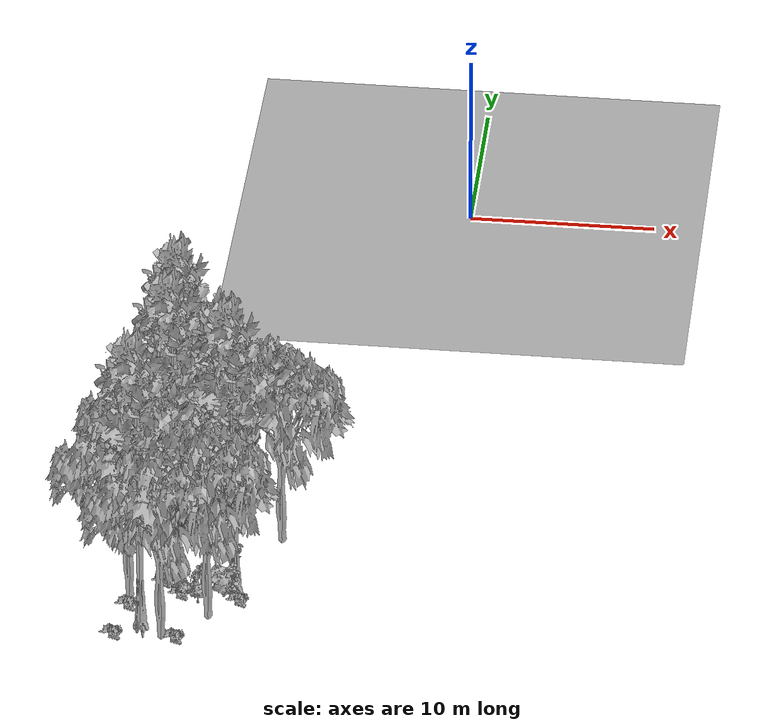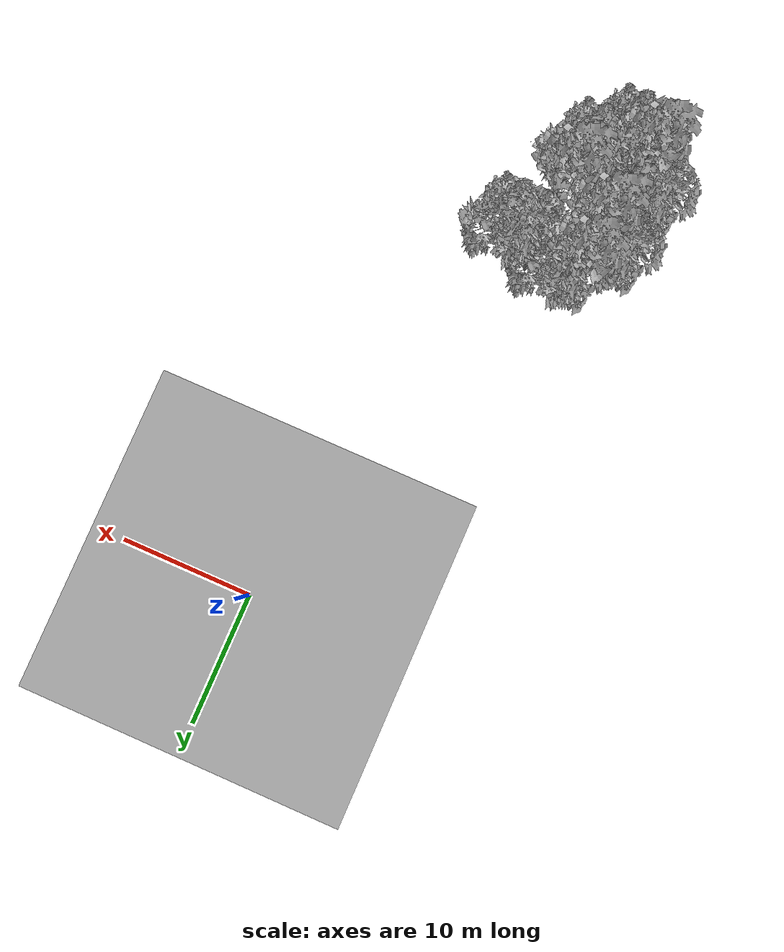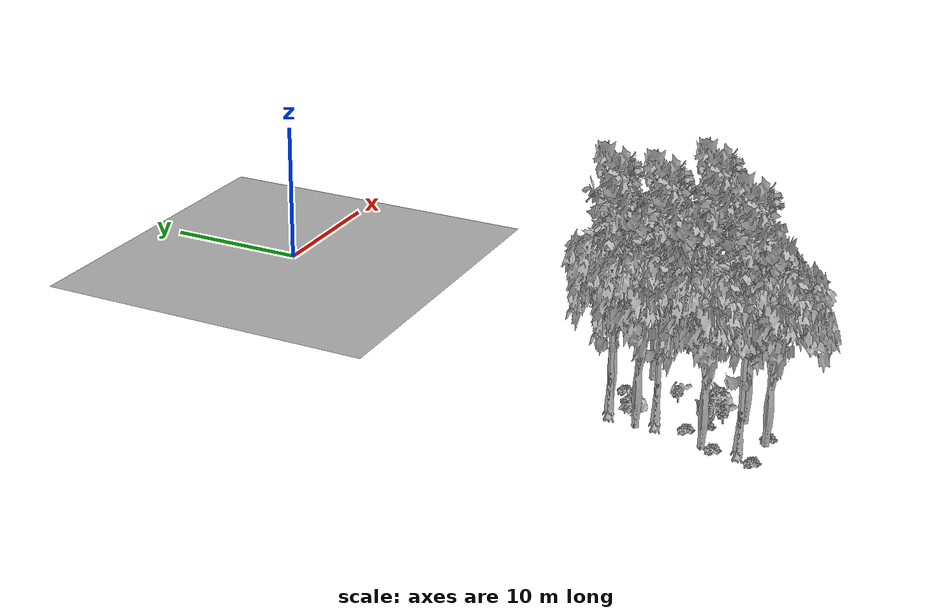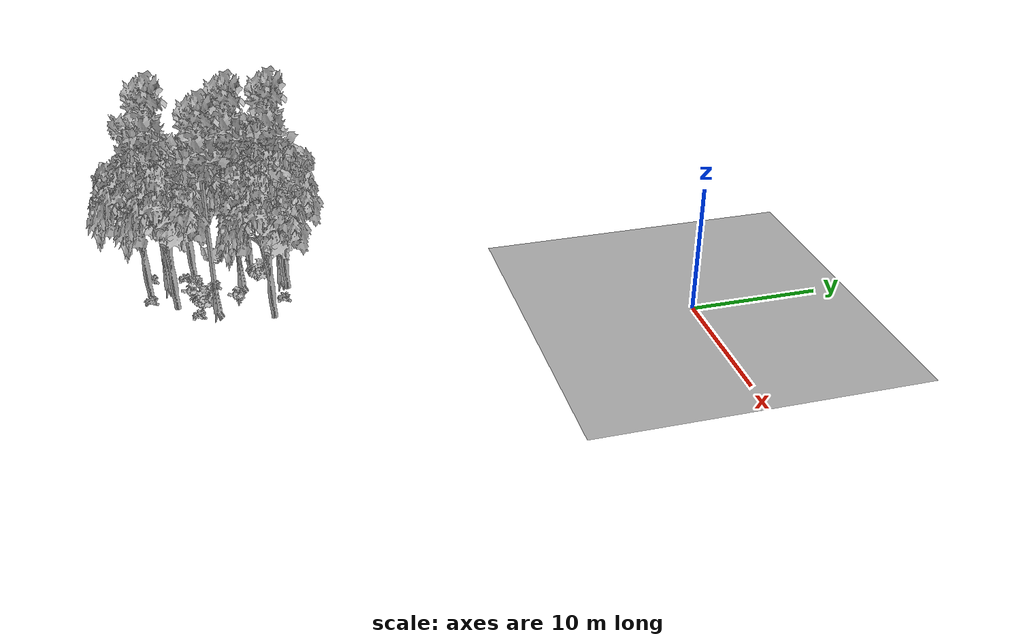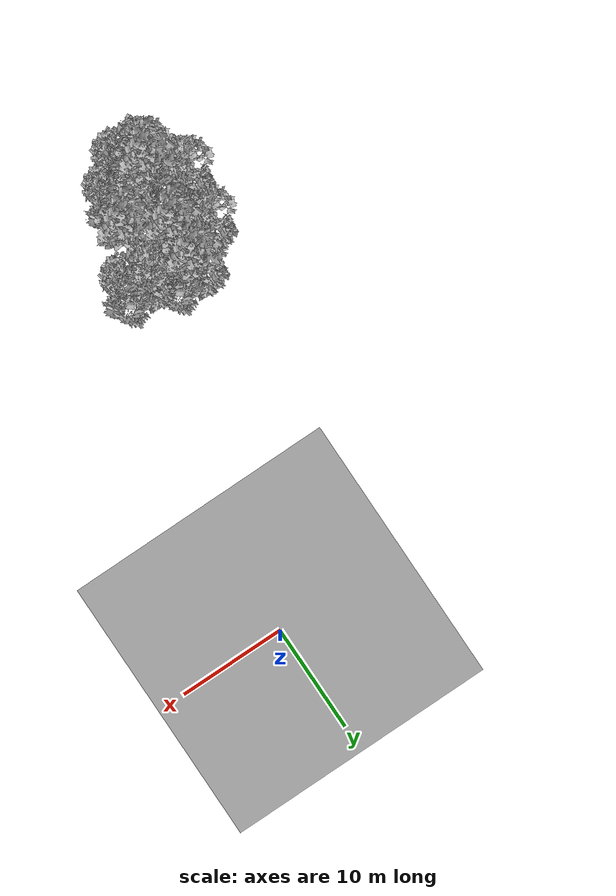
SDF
<sdf version="1.7">
 <world name="default">
  <model name="ground_plane">
   <static>1</static>
   <link name="link">
    <collision name="collision">
     <pose>-50 0 0 0 -0 0</pose>
     <geometry><plane><normal>0 0 1</normal><size>80 80</size></plane></geometry>
     <surface><contact><ode><min_depth>0.01</min_depth><max_vel>0</max_vel></ode></contact></surface>
    </collision>
    <visual name="grass">
     <cast_shadows>0</cast_shadows>
     <geometry>
      <mesh>
       <scale>0.46714285714285714 0.46714285714285714 0.1</scale>
       <uri>file://grass_plane/meshes/grass_plane.dae</uri>
      </mesh>
     </geometry>
    </visual>
   </link>
  </model>
  <model name="Tree 98">
   <static>1</static>
   <pose>-11.86331832489584 -39.40500844615237 0 1.57079 -0 0</pose>
   <link name="link">
    <collision name="collision">
     <geometry><mesh><scale>3.5 5 3.5</scale><uri>model://tree_2/meshes/tree_2.obj</uri></mesh></geometry>
    </collision>
    <visual name="visual">
     <geometry><mesh><scale>3.5 5 3.5</scale><uri>model://tree_2/meshes/tree_2.obj</uri></mesh></geometry>
    </visual>
   </link>
  </model>
  <model name="Tree 120">
   <static>1</static>
   <pose>-13.19389934897578 -31.759007582581926 0 1.57079 -0 0</pose>
   <link name="link">
    <collision name="collision">
     <geometry><mesh><scale>3.5 5 3.5</scale><uri>model://tree_2/meshes/tree_2.obj</uri></mesh></geometry>
    </collision>
    <visual name="visual">
     <geometry><mesh><scale>3.5 5 3.5</scale><uri>model://tree_2/meshes/tree_2.obj</uri></mesh></geometry>
    </visual>
   </link>
  </model>
  <model name="Tree 158">
   <static>1</static>
   <pose>-8.583754657874955 -34.56168332022199 0 1.57079 -0 0</pose>
   <link name="link">
    <collision name="collision">
     <geometry><mesh><scale>3.5 5 3.5</scale><uri>model://tree_9/meshes/tree_9.obj</uri></mesh></geometry>
    </collision>
    <visual name="visual">
     <geometry><mesh><scale>3.5 5 3.5</scale><uri>model://tree_9/meshes/tree_9.obj</uri></mesh></geometry>
    </visual>
   </link>
  </model>
  <model name="Tree 327">
   <static>1</static>
   <pose>-6.746809448503747 -30.53960925008612 0 1.57079 -0 0</pose>
   <link name="link">
    <collision name="collision">
     <geometry><mesh><scale>3.5 5 3.5</scale><uri>model://tree_2/meshes/tree_2.obj</uri></mesh></geometry>
    </collision>
    <visual name="visual">
     <geometry><mesh><scale>3.5 5 3.5</scale><uri>model://tree_2/meshes/tree_2.obj</uri></mesh></geometry>
    </visual>
   </link>
  </model>
  <model name="Tree 373">
   <static>1</static>
   <pose>-11.770068889996228 -29.551416382941404 0 1.57079 -0 0</pose>
   <link name="link">
    <collision name="collision">
     <geometry><mesh><scale>3.5 5 3.5</scale><uri>model://tree_9/meshes/tree_9.obj</uri></mesh></geometry>
    </collision>
    <visual name="visual">
     <geometry><mesh><scale>3.5 5 3.5</scale><uri>model://tree_9/meshes/tree_9.obj</uri></mesh></geometry>
    </visual>
   </link>
  </model>
  <model name="Tree 452">
   <static>1</static>
   <pose>-13.908124489561661 -36.123290380471296 0 1.57079 -0 0</pose>
   <link name="link">
    <collision name="collision">
     <geometry><mesh><scale>3.5 5 3.5</scale><uri>model://tree_2/meshes/tree_2.obj</uri></mesh></geometry>
    </collision>
    <visual name="visual">
     <geometry><mesh><scale>3.5 5 3.5</scale><uri>model://tree_2/meshes/tree_2.obj</uri></mesh></geometry>
    </visual>
   </link>
  </model>
  <model name="Tree 457">
   <static>1</static>
   <pose>-10.637114450800716 -29.19958183634881 0 1.57079 -0 0</pose>
   <link name="link">
    <collision name="collision">
     <geometry><mesh><scale>3.5 5 3.5</scale><uri>model://tree_2/meshes/tree_2.obj</uri></mesh></geometry>
    </collision>
    <visual name="visual">
     <geometry><mesh><scale>3.5 5 3.5</scale><uri>model://tree_2/meshes/tree_2.obj</uri></mesh></geometry>
    </visual>
   </link>
  </model>
  <model name="Tree 465">
   <static>1</static>
   <pose>-11.841685725424053 -32.57191123960474 0 1.57079 -0 0</pose>
   <link name="link">
    <collision name="collision">
     <geometry><mesh><scale>3.5 5 3.5</scale><uri>model://tree_9/meshes/tree_9.obj</uri></mesh></geometry>
    </collision>
    <visual name="visual">
     <geometry><mesh><scale>3.5 5 3.5</scale><uri>model://tree_9/meshes/tree_9.obj</uri></mesh></geometry>
    </visual>
   </link>
  </model>
  <model name="Tree 538">
   <static>1</static>
   <pose>-9.712533006077638 -37.46925013961235 0 1.57079 -0 0</pose>
   <link name="link">
    <collision name="collision">
     <geometry><mesh><scale>3.5 5 3.5</scale><uri>model://tree_2/meshes/tree_2.obj</uri></mesh></geometry>
    </collision>
    <visual name="visual">
     <geometry><mesh><scale>3.5 5 3.5</scale><uri>model://tree_2/meshes/tree_2.obj</uri></mesh></geometry>
    </visual>
   </link>
  </model>
  <model name="Tree 564">
   <static>1</static>
   <pose>-12.985871640347646 -38.09149693716853 0 1.57079 -0 0</pose>
   <link name="link">
    <collision name="collision">
     <geometry><mesh><scale>3.5 5 3.5</scale><uri>model://tree_9/meshes/tree_9.obj</uri></mesh></geometry>
    </collision>
    <visual name="visual">
     <geometry><mesh><scale>3.5 5 3.5</scale><uri>model://tree_9/meshes/tree_9.obj</uri></mesh></geometry>
    </visual>
   </link>
  </model>
  <model name="Bush 26">
   <static>1</static>
   <pose>-11.146688847916892 -39.38154182477466 0 1.57079 -0 0</pose>
   <link name="link">
    <collision name="collision">
     <geometry><mesh><scale>2 2 2</scale><uri>model://bush_2/meshes/bush_2.obj</uri></mesh></geometry>
     <surface><contact><collide_without_contact>false</collide_without_contact></contact></surface>
    </collision>
    <visual name="visual">
     <geometry><mesh><scale>2 2 2</scale><uri>model://bush_2/meshes/bush_2.obj</uri></mesh></geometry>
    </visual>
   </link>
  </model>
  <model name="Bush 121">
   <static>1</static>
   <pose>-10.38341969107718 -35.10414827686653 0 1.57079 -0 0</pose>
   <link name="link">
    <collision name="collision">
     <geometry><mesh><scale>2 2 2</scale><uri>model://bush_4/meshes/bush_4.obj</uri></mesh></geometry>
     <surface><contact><collide_without_contact>false</collide_without_contact></contact></surface>
    </collision>
    <visual name="visual">
     <geometry><mesh><scale>2 2 2</scale><uri>model://bush_4/meshes/bush_4.obj</uri></mesh></geometry>
    </visual>
   </link>
  </model>
  <model name="Bush 156">
   <static>1</static>
   <pose>-11.313747625584561 -35.65492653934604 0 1.57079 -0 0</pose>
   <link name="link">
    <collision name="collision">
     <geometry><mesh><scale>2 2 2</scale><uri>model://bush_2/meshes/bush_2.obj</uri></mesh></geometry>
     <surface><contact><collide_without_contact>false</collide_without_contact></contact></surface>
    </collision>
    <visual name="visual">
     <geometry><mesh><scale>2 2 2</scale><uri>model://bush_2/meshes/bush_2.obj</uri></mesh></geometry>
    </visual>
   </link>
  </model>
  <model name="Bush 202">
   <static>1</static>
   <pose>-9.156184311838004 -29.614272080869792 0 1.57079 -0 0</pose>
   <link name="link">
    <collision name="collision">
     <geometry><mesh><scale>2 2 2</scale><uri>model://bush_2/meshes/bush_2.obj</uri></mesh></geometry>
     <surface><contact><collide_without_contact>false</collide_without_contact></contact></surface>
    </collision>
    <visual name="visual">
     <geometry><mesh><scale>2 2 2</scale><uri>model://bush_2/meshes/bush_2.obj</uri></mesh></geometry>
    </visual>
   </link>
  </model>
  <model name="Bush 277">
   <static>1</static>
   <pose>-14.311383404080349 -39.350098820411546 0 1.57079 -0 0</pose>
   <link name="link">
    <collision name="collision">
     <geometry><mesh><scale>2 2 2</scale><uri>model://bush_2/meshes/bush_2.obj</uri></mesh></geometry>
     <surface><contact><collide_without_contact>false</collide_without_contact></contact></surface>
    </collision>
    <visual name="visual">
     <geometry><mesh><scale>2 2 2</scale><uri>model://bush_2/meshes/bush_2.obj</uri></mesh></geometry>
    </visual>
   </link>
  </model>
  <model name="Bush 311">
   <static>1</static>
   <pose>-11.391197619437936 -35.76145645816418 0 1.57079 -0 0</pose>
   <link name="link">
    <collision name="collision">
     <geometry><mesh><scale>2 2 2</scale><uri>model://bush_5/meshes/bush_5.obj</uri></mesh></geometry>
     <surface><contact><collide_without_contact>false</collide_without_contact></contact></surface>
    </collision>
    <visual name="visual">
     <geometry><mesh><scale>2 2 2</scale><uri>model://bush_5/meshes/bush_5.obj</uri></mesh></geometry>
    </visual>
   </link>
  </model>
  <model name="Bush 330">
   <static>1</static>
   <pose>-9.052405692477208 -35.663383902690455 0 1.57079 -0 0</pose>
   <link name="link">
    <collision name="collision">
     <geometry><mesh><scale>2 2 2</scale><uri>model://bush_1/meshes/bush_1.obj</uri></mesh></geometry>
     <surface><contact><collide_without_contact>false</collide_without_contact></contact></surface>
    </collision>
    <visual name="visual">
     <geometry><mesh><scale>2 2 2</scale><uri>model://bush_1/meshes/bush_1.obj</uri></mesh></geometry>
    </visual>
   </link>
  </model>
  <model name="Bush 401">
   <static>1</static>
   <pose>-12.270655136606706 -34.663025208927614 0 1.57079 -0 0</pose>
   <link name="link">
    <collision name="collision">
     <geometry><mesh><scale>2 2 2</scale><uri>model://bush_2/meshes/bush_2.obj</uri></mesh></geometry>
     <surface><contact><collide_without_contact>false</collide_without_contact></contact></surface>
    </collision>
    <visual name="visual">
     <geometry><mesh><scale>2 2 2</scale><uri>model://bush_2/meshes/bush_2.obj</uri></mesh></geometry>
    </visual>
   </link>
  </model>
  <model name="Bush 415">
   <static>1</static>
   <pose>-10.317525420098349 -36.30651563050827 0 1.57079 -0 0</pose>
   <link name="link">
    <collision name="collision">
     <geometry><mesh><scale>2 2 2</scale><uri>model://bush_0/meshes/bush_0.obj</uri></mesh></geometry>
     <surface><contact><collide_without_contact>false</collide_without_contact></contact></surface>
    </collision>
    <visual name="visual">
     <geometry><mesh><scale>2 2 2</scale><uri>model://bush_0/meshes/bush_0.obj</uri></mesh></geometry>
    </visual>
   </link>
  </model>
  <model name="Bush 470">
   <static>1</static>
   <pose>-8.283334908633968 -35.930839008039506 0 1.57079 -0 0</pose>
   <link name="link">
    <collision name="collision">
     <geometry><mesh><scale>2 2 2</scale><uri>model://bush_2/meshes/bush_2.obj</uri></mesh></geometry>
     <surface><contact><collide_without_contact>false</collide_without_contact></contact></surface>
    </collision>
    <visual name="visual">
     <geometry><mesh><scale>2 2 2</scale><uri>model://bush_2/meshes/bush_2.obj</uri></mesh></geometry>
    </visual>
   </link>
  </model>
  <model name="Bush 485">
   <static>1</static>
   <pose>-8.924799779546461 -32.97960446381305 0 1.57079 -0 0</pose>
   <link name="link">
    <collision name="collision">
     <geometry><mesh><scale>2 2 2</scale><uri>model://bush_0/meshes/bush_0.obj</uri></mesh></geometry>
     <surface><contact><collide_without_contact>false</collide_without_contact></contact></surface>
    </collision>
    <visual name="visual">
     <geometry><mesh><scale>2 2 2</scale><uri>model://bush_0/meshes/bush_0.obj</uri></mesh></geometry>
    </visual>
   </link>
  </model>
  <model name="Bush 521">
   <static>1</static>
   <pose>-13.868809952917353 -36.83571921124762 0 1.57079 -0 0</pose>
   <link name="link">
    <collision name="collision">
     <geometry><mesh><scale>2 2 2</scale><uri>model://bush_2/meshes/bush_2.obj</uri></mesh></geometry>
     <surface><contact><collide_without_contact>false</collide_without_contact></contact></surface>
    </collision>
    <visual name="visual">
     <geometry><mesh><scale>2 2 2</scale><uri>model://bush_2/meshes/bush_2.obj</uri></mesh></geometry>
    </visual>
   </link>
  </model>
  <model name="Bush 633">
   <static>1</static>
   <pose>-12.188672802809943 -31.36689437828653 0 1.57079 -0 0</pose>
   <link name="link">
    <collision name="collision">
     <geometry><mesh><scale>2 2 2</scale><uri>model://bush_1/meshes/bush_1.obj</uri></mesh></geometry>
     <surface><contact><collide_without_contact>false</collide_without_contact></contact></surface>
    </collision>
    <visual name="visual">
     <geometry><mesh><scale>2 2 2</scale><uri>model://bush_1/meshes/bush_1.obj</uri></mesh></geometry>
    </visual>
   </link>
  </model>
 </world>
</sdf>
